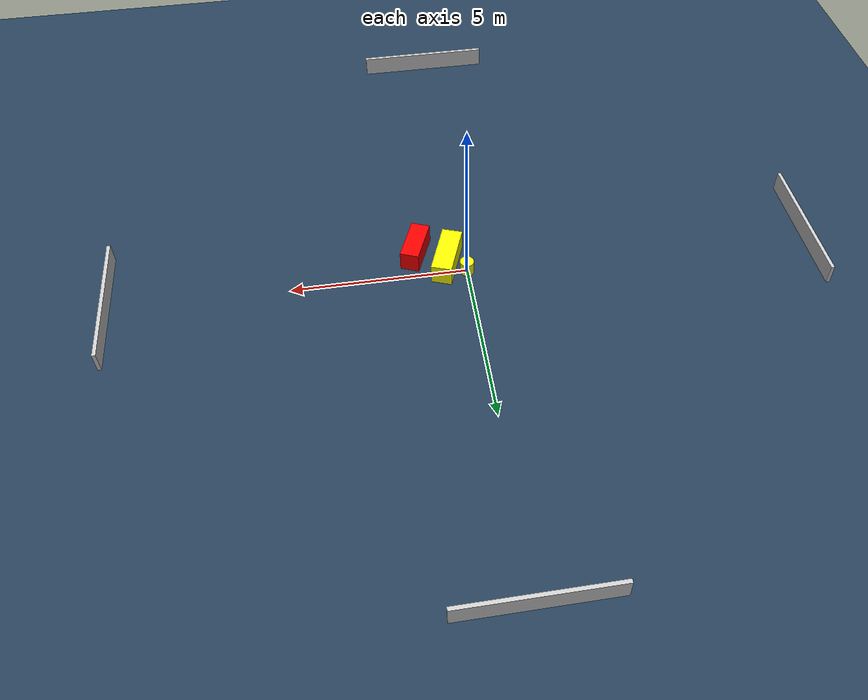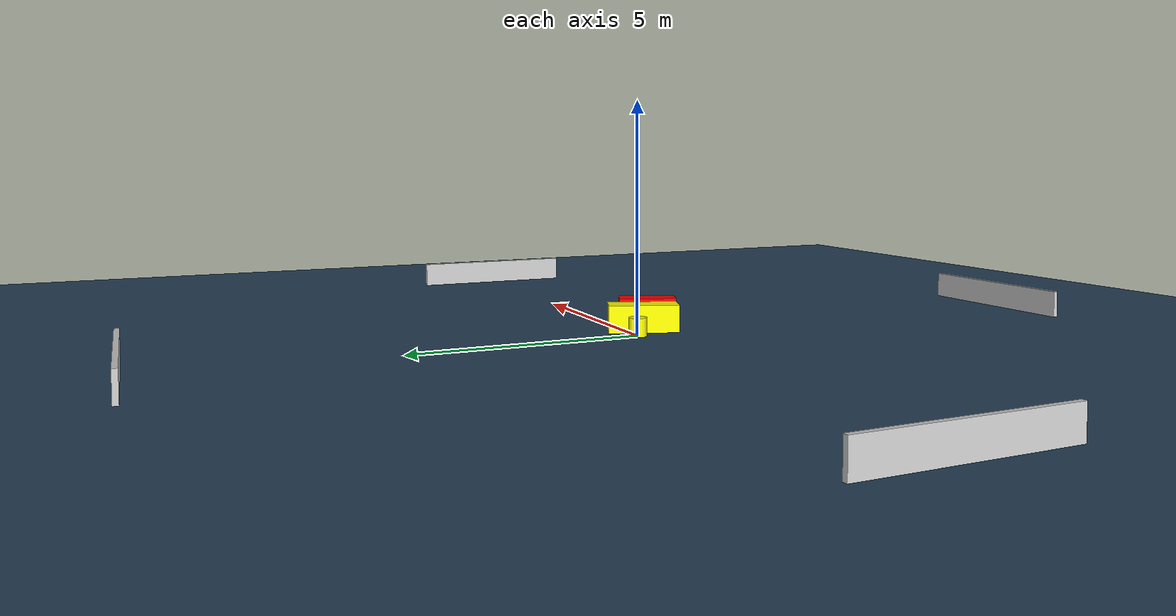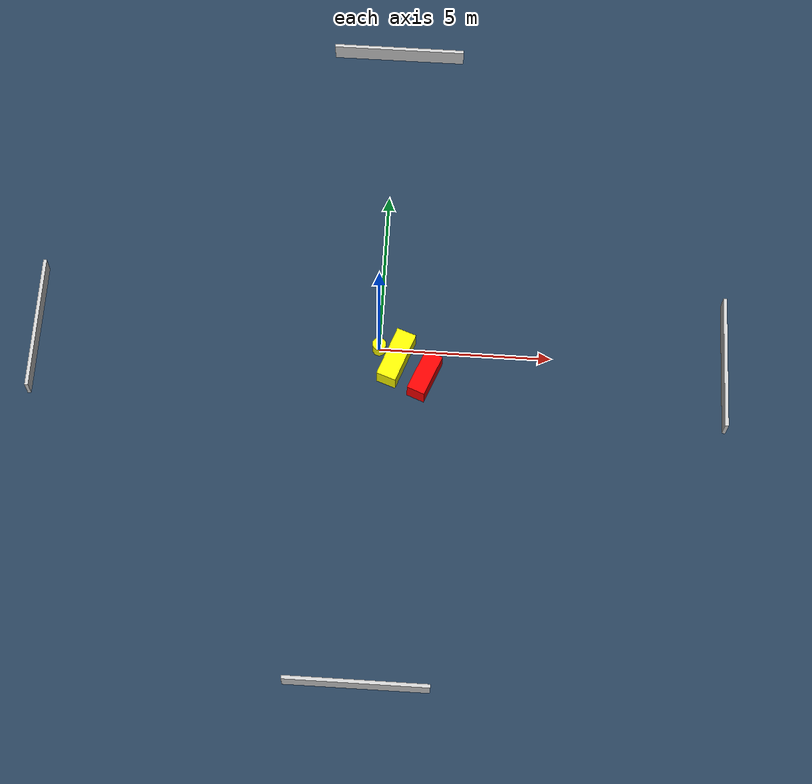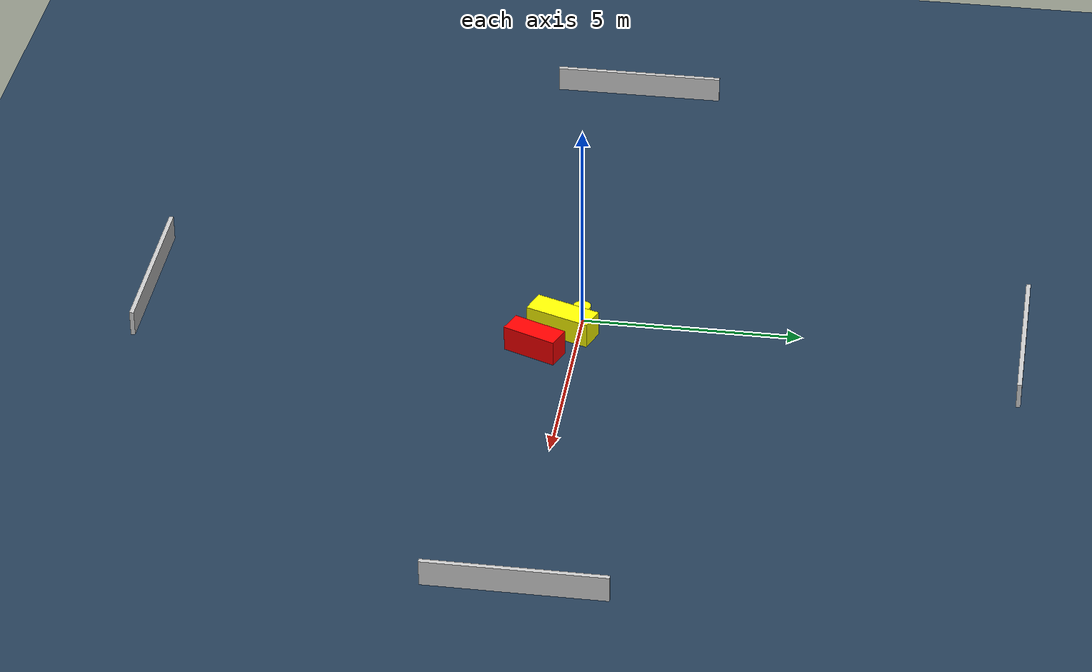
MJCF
<?xml version="1.0" ?>
<mujoco model="generated_environment">
  <option timestep="0.01" integrator="RK4" cone="elliptic"/>
  <default>
    <geom density="1"/>
  </default>
  <asset>
    <texture builtin="gradient" height="3072" name="skybox" rgb1="0.3 0.5 0.7" rgb2="0 0 0" type="skybox" width="512"/>
    <texture builtin="checker" height="300" name="groundplane" rgb1="0.2 0.3 0.4" rgb2="0.1 0.2 0.3" type="2d" width="300"/>
    <material name="groundplane" reflectance="0.2" texrepeat="5 5" texture="groundplane"/>
  </asset>
  <worldbody>
    <light dir="0 0 -1" directional="true" pos="0 0 1.5"/>
    <geom condim="3" friction="0.5 0.005 0.001" material="groundplane" name="floor" pos="0 0 0" size="0 0 0.05" type="plane"/>
    <body name="walls">
      <geom name="wall_1" condim="4" pos="-10.0 0.0 0.3" rgba="0.800000011920929 0.800000011920929 0.800000011920929 1.0" size="0.05 2.0 0.3" type="box"/>
      <geom name="wall_2" condim="4" pos="10.0 0.0 0.3" rgba="0.800000011920929 0.800000011920929 0.800000011920929 1.0" size="0.05 2.0 0.3" type="box"/>
      <geom name="wall_3" condim="4" pos="0.0 -10.0 0.3" rgba="0.800000011920929 0.800000011920929 0.800000011920929 1.0" size="2.0 0.05 0.3" type="box"/>
      <geom name="wall_4" condim="4" pos="0.0 10.0 0.3" rgba="0.800000011920929 0.800000011920929 0.800000011920929 1.0" size="2.0 0.05 0.3" type="box"/>
    </body>
    <body name="robot">
      <joint name="joint_x" type="slide" pos="0 0 0" axis="1 0 0"/>
      <joint name="joint_y" type="slide" pos="0 0 0" axis="0 1 0"/>
      <geom name="robot" type="cylinder" pos="0.0 0.0 0.2" size="0.2 0.2 0.0" mass="5.0" friction="1.0 0.005 0.0001" condim="4" rgba="1.0 1.0 0.0 1.0"/>
    </body>
    <body name="obstacle_1_movable">
      <geom name="obstacle_1_movable" condim="4" pos="0.5188734782888343 -0.3757727706292774 0.3" euler="0 0 250.10466292284082" friction="0.0 0.005 0.001" rgba="1.0 1.0 0.0 1.0" size="0.766957889526942 0.29282077404806406 0.3" type="box" mass="0.1"/>
      <joint type="free"/>
    </body>
    <body name="obstacle_2_static">
      <geom name="obstacle_2_static" condim="4" pos="1.368176769626521 -0.888803567324809 0.3" euler="0 0 338.1168520760758" friction="0.0 0.005 0.001" rgba="1.0 0.0 0.0 1.0" size="0.26722056349910395 0.64011712334229 0.3" type="box"/>
    </body>
  </worldbody>
  <actuator>
    <motor name="actuator_x" joint="joint_x" gear="1" ctrlrange="-1 1"/>
    <motor name="actuator_y" joint="joint_y" gear="1" ctrlrange="-1 1"/>
  </actuator>
</mujoco>
